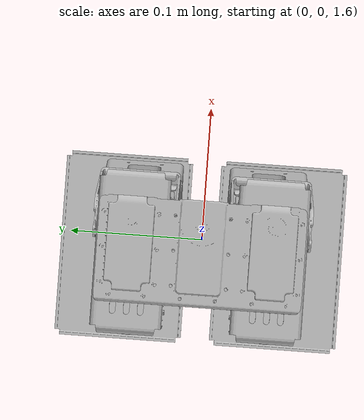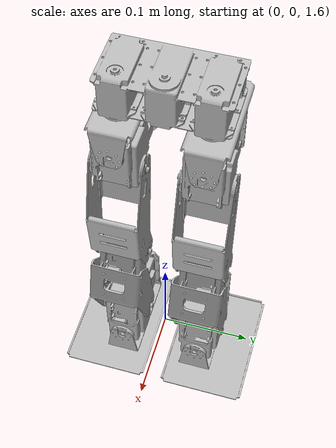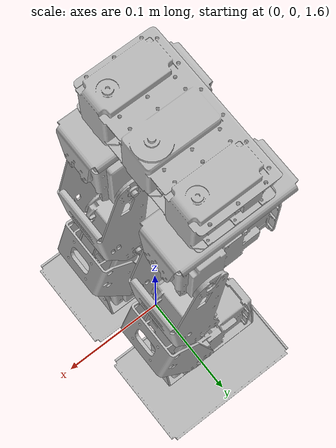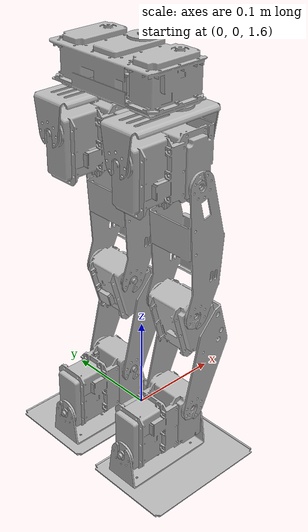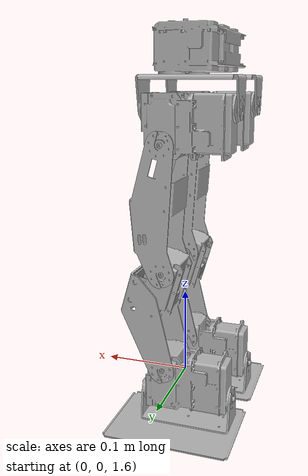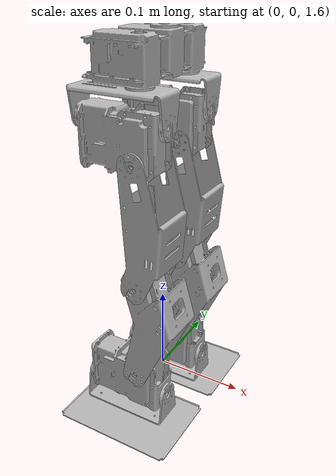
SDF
<?xml version="1.0"?>
<sdf version="1.6">
  <world name="testbot10_gazebo">
    <physics name="default_physics" default="0" type="ode">
      <max_step_size>0.001</max_step_size> <!-- 가지보 주기 -->
      <real_time_factor>1</real_time_factor>
      <real_time_update_rate>1000</real_time_update_rate>
      <ode>
	<solver>
	  <type>quick</type>
	  <iters>100</iters>
	  <sor>1.0</sor>
	  <use_dynamic_moi_rescaling>false</use_dynamic_moi_rescaling>
	</solver>
      </ode>
    </physics>

    <include>
      <uri>model://ground_plane</uri>
    </include>

    <include>
      <uri>model://sun</uri>
    </include>

<include>
      <uri>model://testbot10_description</uri>
	    <pose frame="">0 0 1 0 0 0</pose>
       <plugin name="testbot10_plugin" filename="libtestbot10_gazebo.so"/>
    </include>

  </world>
</sdf>

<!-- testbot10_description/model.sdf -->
<sdf version='1.6'>
  <model name='testbot10'>
   <plugin name="gazebo_ros_control" filename="libgazebo_ros_control.so">
    <robotNamespace>/testbot10</robotNamespace>
  </plugin>
    <link name='base_link'>
      <pose frame=''>-0 -0 1 0 -0 0</pose>
      <inertial>
        <pose frame=''>-0.016883 1e-06 -0.026142 0 -0 0</pose>
        <mass>0.281604</mass>
        <inertia>
          <ixx>9.5115e-05</ixx>
          <ixy>-1.64268e-09</ixy>
          <ixz>1.0623e-06</ixz>
          <iyy>0.000134449</iyy>
          <iyz>-8.02833e-09</iyz>
          <izz>0.000133906</izz>
        </inertia>
      </inertial>
      <self_collide>0</self_collide>
      <enable_wind>0</enable_wind>
      <kinematic>0</kinematic>
      <visual name='base_link_visual'>
        <pose frame=''>0 0 0 0 -0 0</pose>
        <geometry>
          <mesh>
            <scale>1 1 1</scale>
            <uri>/home/jaemin/catkin_ws/src/testbot10_description/meshes/base_link.STL</uri>
          </mesh>
        </geometry>
        <transparency>0</transparency>
        <cast_shadows>1</cast_shadows>
      </visual>
      <collision name='base_link_collision'>
        <laser_retro>0</laser_retro>
        <max_contacts>10</max_contacts>
        <pose frame=''>0 0 0 0 -0 0</pose>
        <geometry>
          <mesh>
            <uri>/home/jaemin/catkin_ws/src/testbot10_description/meshes/base_link.STL</uri>
            <scale>1 1 1</scale>
          </mesh>
        </geometry>
        <surface>
          <friction>
            <ode>
              <mu>1</mu>
              <mu2>1</mu2>
              <fdir1>0 0 0</fdir1>
              <slip1>0</slip1>
              <slip2>0</slip2>
            </ode>
            <torsional>
              <coefficient>1</coefficient>
              <patch_radius>0</patch_radius>
              <surface_radius>0</surface_radius>
              <use_patch_radius>1</use_patch_radius>
              <ode>
                <slip>0</slip>
              </ode>
            </torsional>
          </friction>
          <bounce>
            <restitution_coefficient>0</restitution_coefficient>
            <threshold>1e+06</threshold>
          </bounce>
          <contact>
            <collide_without_contact>0</collide_without_contact>
            <collide_without_contact_bitmask>1</collide_without_contact_bitmask>
            <collide_bitmask>1</collide_bitmask>
            <ode>
              <soft_cfm>0</soft_cfm>
              <soft_erp>0.2</soft_erp>
              <kp>1e+13</kp>
              <kd>1</kd>
              <max_vel>0.01</max_vel>
              <min_depth>0</min_depth>
            </ode>
            <bullet>
              <split_impulse>1</split_impulse>
              <split_impulse_penetration_threshold>-0.01</split_impulse_penetration_threshold>
              <soft_cfm>0</soft_cfm>
              <soft_erp>0.2</soft_erp>
              <kp>1e+13</kp>
              <kd>1</kd>
            </bullet>
          </contact>
        </surface>
      </collision>
    </link>
    <link name='LL_link1'>
      <pose frame=''>0 -0.045 0.948 0 0 -1.5708</pose>
      <inertial>
        <pose frame=''>0 -0.017114 -0.007811 0 -0 0</pose>
        <mass>0.0361632</mass>
        <inertia>
          <ixx>5.42466e-05</ixx>
          <ixy>-1.61368e-11</ixy>
          <ixz>2.26867e-18</ixz>
          <iyy>9.66379e-06</iyy>
          <iyz>-2.15975e-07</iyz>
          <izz>5.67807e-05</izz>
        </inertia>
      </inertial>
      <self_collide>0</self_collide>
      <enable_wind>0</enable_wind>
      <kinematic>0</kinematic>
      <visual name='LL_link1_visual'>
        <pose frame=''>0 0 0 0 -0 0</pose>
        <geometry>
          <mesh>
            <scale>1 1 1</scale>
            <uri>/home/jaemin/catkin_ws/src/testbot10_description/meshes/LL_link1.STL</uri>
          </mesh>
        </geometry>
        <transparency>0</transparency>
        <cast_shadows>1</cast_shadows>
      </visual>
      <collision name='LL_link1_collision'>
        <laser_retro>0</laser_retro>
        <max_contacts>10</max_contacts>
        <pose frame=''>0 0 0 0 -0 0</pose>
        <geometry>
          <mesh>
            <uri>/home/jaemin/catkin_ws/src/testbot10_description/meshes/LL_link1.STL</uri>
            <scale>1 1 1</scale>
          </mesh>
        </geometry>
        <surface>
          <friction>
            <ode>
              <mu>1</mu>
              <mu2>1</mu2>
              <fdir1>0 0 0</fdir1>
              <slip1>0</slip1>
              <slip2>0</slip2>
            </ode>
            <torsional>
              <coefficient>1</coefficient>
              <patch_radius>0</patch_radius>
              <surface_radius>0</surface_radius>
              <use_patch_radius>1</use_patch_radius>
              <ode>
                <slip>0</slip>
              </ode>
            </torsional>
          </friction>
          <bounce>
            <restitution_coefficient>0</restitution_coefficient>
            <threshold>1e+06</threshold>
          </bounce>
          <contact>
            <collide_without_contact>0</collide_without_contact>
            <collide_without_contact_bitmask>1</collide_without_contact_bitmask>
            <collide_bitmask>1</collide_bitmask>
            <ode>
              <soft_cfm>0</soft_cfm>
              <soft_erp>0.2</soft_erp>
              <kp>1e+13</kp>
              <kd>1</kd>
              <max_vel>0.01</max_vel>
              <min_depth>0</min_depth>
            </ode>
            <bullet>
              <split_impulse>1</split_impulse>
              <split_impulse_penetration_threshold>-0.01</split_impulse_penetration_threshold>
              <soft_cfm>0</soft_cfm>
              <soft_erp>0.2</soft_erp>
              <kp>1e+13</kp>
              <kd>1</kd>
            </bullet>
          </contact>
        </surface>
      </collision>
    </link>
    <link name='LL_link2'>
      <pose frame=''>-0.0682 -0.0451 0.91536 -1.5708 -0 -1.5708</pose>
      <inertial>
        <pose frame=''>-0.000255 0.017523 0.050762 0 -0 0</pose>
        <mass>0.199137</mass>
        <inertia>
          <ixx>7.9422e-05</ixx>
          <ixy>1.06395e-06</ixy>
          <ixz>-4.62259e-09</ixz>
          <iyy>4.77173e-05</iyy>
          <iyz>-1.04492e-06</iyz>
          <izz>8.02433e-05</izz>
        </inertia>
      </inertial>
      <self_collide>0</self_collide>
      <enable_wind>0</enable_wind>
      <kinematic>0</kinematic>
      <visual name='LL_link2_visual'>
        <pose frame=''>0 0 0 0 -0 0</pose>
        <geometry>
          <mesh>
            <scale>1 1 1</scale>
            <uri>/home/jaemin/catkin_ws/src/testbot10_description/meshes/LL_link2.STL</uri>
          </mesh>
        </geometry>
        <transparency>0</transparency>
        <cast_shadows>1</cast_shadows>
      </visual>
      <collision name='LL_link2_collision'>
        <laser_retro>0</laser_retro>
        <max_contacts>10</max_contacts>
        <pose frame=''>0 0 0 0 -0 0</pose>
        <geometry>
          <mesh>
            <uri>/home/jaemin/catkin_ws/src/testbot10_description/meshes/LL_link2.STL</uri>
            <scale>1 1 1</scale>
          </mesh>
        </geometry>
        <surface>
          <friction>
            <ode>
              <mu>1</mu>
              <mu2>1</mu2>
              <fdir1>0 0 0</fdir1>
              <slip1>0</slip1>
              <slip2>0</slip2>
            </ode>
            <torsional>
              <coefficient>1</coefficient>
              <patch_radius>0</patch_radius>
              <surface_radius>0</surface_radius>
              <use_patch_radius>1</use_patch_radius>
              <ode>
                <slip>0</slip>
              </ode>
            </torsional>
          </friction>
          <bounce>
            <restitution_coefficient>0</restitution_coefficient>
            <threshold>1e+06</threshold>
          </bounce>
          <contact>
            <collide_without_contact>0</collide_without_contact>
            <collide_without_contact_bitmask>1</collide_without_contact_bitmask>
            <collide_bitmask>1</collide_bitmask>
            <ode>
              <soft_cfm>0</soft_cfm>
              <soft_erp>0.2</soft_erp>
              <kp>1e+13</kp>
              <kd>1</kd>
              <max_vel>0.01</max_vel>
              <min_depth>0</min_depth>
            </ode>
            <bullet>
              <split_impulse>1</split_impulse>
              <split_impulse_penetration_threshold>-0.01</split_impulse_penetration_threshold>
              <soft_cfm>0</soft_cfm>
              <soft_erp>0.2</soft_erp>
              <kp>1e+13</kp>
              <kd>1</kd>
            </bullet>
          </contact>
        </surface>
      </collision>
    </link>
    <link name='LL_link3'>
      <pose frame=''>0.00473 -0.019 0.87929 0.791928 1.57079 2.36272</pose>
      <inertial>
        <pose frame=''>0.070431 -0.008638 -0.028553 0 -0 0</pose>
        <mass>0.0264468</mass>
        <inertia>
          <ixx>1.76003e-05</ixx>
          <ixy>1.98294e-06</ixy>
          <ixz>-1.07814e-18</ixz>
          <iyy>4.19729e-05</iyy>
          <iyz>3.18617e-19</iyz>
          <izz>3.31231e-05</izz>
        </inertia>
      </inertial>
      <self_collide>0</self_collide>
      <enable_wind>0</enable_wind>
      <kinematic>0</kinematic>
      <visual name='LL_link3_visual'>
        <pose frame=''>0 0 0 0 -0 0</pose>
        <geometry>
          <mesh>
            <scale>1 1 1</scale>
            <uri>/home/jaemin/catkin_ws/src/testbot10_description/meshes/LL_link3.STL</uri>
          </mesh>
        </geometry>
        <transparency>0</transparency>
        <cast_shadows>1</cast_shadows>
      </visual>
      <collision name='LL_link3_collision'>
        <laser_retro>0</laser_retro>
        <max_contacts>10</max_contacts>
        <pose frame=''>0 0 0 0 -0 0</pose>
        <geometry>
          <mesh>
            <uri>/home/jaemin/catkin_ws/src/testbot10_description/meshes/LL_link3.STL</uri>
            <scale>1 1 1</scale>
          </mesh>
        </geometry>
        <surface>
          <friction>
            <ode>
              <mu>1</mu>
              <mu2>1</mu2>
              <fdir1>0 0 0</fdir1>
              <slip1>0</slip1>
              <slip2>0</slip2>
            </ode>
            <torsional>
              <coefficient>1</coefficient>
              <patch_radius>0</patch_radius>
              <surface_radius>0</surface_radius>
              <use_patch_radius>1</use_patch_radius>
              <ode>
                <slip>0</slip>
              </ode>
            </torsional>
          </friction>
          <bounce>
            <restitution_coefficient>0</restitution_coefficient>
            <threshold>1e+06</threshold>
          </bounce>
          <contact>
            <collide_without_contact>0</collide_without_contact>
            <collide_without_contact_bitmask>1</collide_without_contact_bitmask>
            <collide_bitmask>1</collide_bitmask>
            <ode>
              <soft_cfm>0</soft_cfm>
              <soft_erp>0.2</soft_erp>
              <kp>1e+13</kp>
              <kd>1</kd>
              <max_vel>0.01</max_vel>
              <min_depth>0</min_depth>
            </ode>
            <bullet>
              <split_impulse>1</split_impulse>
              <split_impulse_penetration_threshold>-0.01</split_impulse_penetration_threshold>
              <soft_cfm>0</soft_cfm>
              <soft_erp>0.2</soft_erp>
              <kp>1e+13</kp>
              <kd>1</kd>
            </bullet>
          </contact>
        </surface>
      </collision>
    </link>
    <link name='LL_link4'>
      <pose frame=''>0.004713 -0.019 0.743 0.779576 1.57079 2.35593</pose>
      <inertial>
        <pose frame=''>0.030599 -0.011896 -0.026025 0 -0 0</pose>
        <mass>0.1488</mass>
        <inertia>
          <ixx>7.27019e-05</ixx>
          <ixy>-1.14416e-05</ixy>
          <ixz>9.55231e-07</ixz>
          <iyy>0.000125677</iyy>
          <iyz>-1.43117e-07</iyz>
          <izz>9.73222e-05</izz>
        </inertia>
      </inertial>
      <self_collide>0</self_collide>
      <enable_wind>0</enable_wind>
      <kinematic>0</kinematic>
      <visual name='LL_link4_visual'>
        <pose frame=''>0 0 0 0 -0 0</pose>
        <geometry>
          <mesh>
            <scale>1 1 1</scale>
            <uri>/home/jaemin/catkin_ws/src/testbot10_description/meshes/LL_link4.STL</uri>
          </mesh>
        </geometry>
        <transparency>0</transparency>
        <cast_shadows>1</cast_shadows>
      </visual>
      <collision name='LL_link4_collision'>
        <laser_retro>0</laser_retro>
        <max_contacts>10</max_contacts>
        <pose frame=''>0 0 0 0 -0 0</pose>
        <geometry>
          <mesh>
            <uri>/home/jaemin/catkin_ws/src/testbot10_description/meshes/LL_link4.STL</uri>
            <scale>1 1 1</scale>
          </mesh>
        </geometry>
        <surface>
          <friction>
            <ode>
              <mu>1</mu>
              <mu2>1</mu2>
              <fdir1>0 0 0</fdir1>
              <slip1>0</slip1>
              <slip2>0</slip2>
            </ode>
            <torsional>
              <coefficient>1</coefficient>
              <patch_radius>0</patch_radius>
              <surface_radius>0</surface_radius>
              <use_patch_radius>1</use_patch_radius>
              <ode>
                <slip>0</slip>
              </ode>
            </torsional>
          </friction>
          <bounce>
            <restitution_coefficient>0</restitution_coefficient>
            <threshold>1e+06</threshold>
          </bounce>
          <contact>
            <collide_without_contact>0</collide_without_contact>
            <collide_without_contact_bitmask>1</collide_without_contact_bitmask>
            <collide_bitmask>1</collide_bitmask>
            <ode>
              <soft_cfm>0</soft_cfm>
              <soft_erp>0.2</soft_erp>
              <kp>1e+13</kp>
              <kd>1</kd>
              <max_vel>0.01</max_vel>
              <min_depth>0</min_depth>
            </ode>
            <bullet>
              <split_impulse>1</split_impulse>
              <split_impulse_penetration_threshold>-0.01</split_impulse_penetration_threshold>
              <soft_cfm>0</soft_cfm>
              <soft_erp>0.2</soft_erp>
              <kp>1e+13</kp>
              <kd>1</kd>
            </bullet>
          </contact>
        </surface>
      </collision>
    </link>
    <link name='LL_link5'>
      <pose frame=''>0.004699 -0.018999 0.63124 0.779576 1.57079 2.35593</pose>
      <inertial>
        <pose frame=''>0.018405 0.022298 -0.025718 0 -0 0</pose>
        <mass>0.199137</mass>
        <inertia>
          <ixx>4.77173e-05</ixx>
          <ixy>-1.04751e-06</ixy>
          <ixz>1.05483e-06</ixz>
          <iyy>8.02432e-05</iyy>
          <iyz>9.18842e-09</iyz>
          <izz>7.9422e-05</izz>
        </inertia>
      </inertial>
      <self_collide>0</self_collide>
      <enable_wind>0</enable_wind>
      <kinematic>0</kinematic>
      <visual name='LL_link5_visual'>
        <pose frame=''>0 0 0 0 -0 0</pose>
        <geometry>
          <mesh>
            <scale>1 1 1</scale>
            <uri>/home/jaemin/catkin_ws/src/testbot10_description/meshes/LL_link5.STL</uri>
          </mesh>
        </geometry>
        <transparency>0</transparency>
        <cast_shadows>1</cast_shadows>
      </visual>
      <collision name='LL_link5_collision'>
        <laser_retro>0</laser_retro>
        <max_contacts>10</max_contacts>
        <pose frame=''>0 0 0 0 -0 0</pose>
        <geometry>
          <mesh>
            <uri>/home/jaemin/catkin_ws/src/testbot10_description/meshes/LL_link5.STL</uri>
            <scale>1 1 1</scale>
          </mesh>
        </geometry>
        <surface>
          <friction>
            <ode>
              <mu>1</mu>
              <mu2>1</mu2>
              <fdir1>0 0 0</fdir1>
              <slip1>0</slip1>
              <slip2>0</slip2>
            </ode>
            <torsional>
              <coefficient>1</coefficient>
              <patch_radius>0</patch_radius>
              <surface_radius>0</surface_radius>
              <use_patch_radius>1</use_patch_radius>
              <ode>
                <slip>0</slip>
              </ode>
            </torsional>
          </friction>
          <bounce>
            <restitution_coefficient>0</restitution_coefficient>
            <threshold>1e+06</threshold>
          </bounce>
          <contact>
            <collide_without_contact>0</collide_without_contact>
            <collide_without_contact_bitmask>1</collide_without_contact_bitmask>
            <collide_bitmask>1</collide_bitmask>
            <ode>
              <soft_cfm>0</soft_cfm>
              <soft_erp>0.2</soft_erp>
              <kp>1e+13</kp>
              <kd>1</kd>
              <max_vel>0.01</max_vel>
              <min_depth>0</min_depth>
            </ode>
            <bullet>
              <split_impulse>1</split_impulse>
              <split_impulse_penetration_threshold>-0.01</split_impulse_penetration_threshold>
              <soft_cfm>0</soft_cfm>
              <soft_erp>0.2</soft_erp>
              <kp>1e+13</kp>
              <kd>1</kd>
            </bullet>
          </contact>
        </surface>
      </collision>
    </link>
    <link name='LL_link6'>
      <pose frame=''>-0.068201 -0.045099 0.59544 0.779576 1.57079 2.35593</pose>
      <inertial>
        <pose frame=''>0.031514 -0.057299 -0.010606 0 -0 0</pose>
        <mass>0.11014</mass>
        <inertia>
          <ixx>0.000244915</ixx>
          <ixy>1.54109e-10</ixy>
          <ixz>2.4e-10</ixz>
          <iyy>6.94954e-05</iyy>
          <iyz>-6.11922e-07</iyz>
          <izz>0.000183606</izz>
        </inertia>
      </inertial>
      <self_collide>0</self_collide>
      <enable_wind>0</enable_wind>
      <kinematic>0</kinematic>
      <visual name='LL_link6_visual'>
        <pose frame=''>0 0 0 0 -0 0</pose>
        <geometry>
          <mesh>
            <scale>1 1 1</scale>
            <uri>/home/jaemin/catkin_ws/src/testbot10_description/meshes/LL_link6.STL</uri>
          </mesh>
        </geometry>
        <transparency>0</transparency>
        <cast_shadows>1</cast_shadows>
      </visual>
      <collision name='LL_link6_collision'>
        <laser_retro>0</laser_retro>
        <max_contacts>10</max_contacts>
        <pose frame=''>0 0 0 0 -0 0</pose>
        <geometry>
          <mesh>
            <uri>/home/jaemin/catkin_ws/src/testbot10_description/meshes/LL_link6.STL</uri>
            <scale>1 1 1</scale>
          </mesh>
        </geometry>
        <surface>
          <friction>
            <ode>
              <mu>1</mu>
              <mu2>1</mu2>
              <fdir1>0 0 0</fdir1>
              <slip1>0</slip1>
              <slip2>0</slip2>
            </ode>
            <torsional>
              <coefficient>1</coefficient>
              <patch_radius>0</patch_radius>
              <surface_radius>0</surface_radius>
              <use_patch_radius>1</use_patch_radius>
              <ode>
                <slip>0</slip>
              </ode>
            </torsional>
          </friction>
          <bounce>
            <restitution_coefficient>0</restitution_coefficient>
            <threshold>1e+06</threshold>
          </bounce>
          <contact>
            <collide_without_contact>0</collide_without_contact>
            <collide_without_contact_bitmask>1</collide_without_contact_bitmask>
            <collide_bitmask>1</collide_bitmask>
            <ode>
              <soft_cfm>0</soft_cfm>
              <soft_erp>0.2</soft_erp>
              <kp>1e+13</kp>
              <kd>1</kd>
              <max_vel>0.01</max_vel>
              <min_depth>0</min_depth>
            </ode>
            <bullet>
              <split_impulse>1</split_impulse>
              <split_impulse_penetration_threshold>-0.01</split_impulse_penetration_threshold>
              <soft_cfm>0</soft_cfm>
              <soft_erp>0.2</soft_erp>
              <kp>1e+13</kp>
              <kd>1</kd>
            </bullet>
          </contact>
        </surface>
      </collision>
    </link>
    <link name='RL_link1'>
      <pose frame=''>-0 0.051775 0.945828 0 0 -1.5708</pose>
      <inertial>
        <pose frame=''>0.006775 -0.017113 -0.00564 0 -0 0</pose>
        <mass>0.0361632</mass>
        <inertia>
          <ixx>5.42466e-05</ixx>
          <ixy>-1.61368e-11</ixy>
          <ixz>2.39357e-18</ixz>
          <iyy>9.66379e-06</iyy>
          <iyz>-2.15975e-07</iyz>
          <izz>5.67807e-05</izz>
        </inertia>
      </inertial>
      <self_collide>0</self_collide>
      <enable_wind>0</enable_wind>
      <kinematic>0</kinematic>
      <visual name='RL_link1_visual'>
        <pose frame=''>0 0 0 0 -0 0</pose>
        <geometry>
          <mesh>
            <scale>1 1 1</scale>
            <uri>/home/jaemin/catkin_ws/src/testbot10_description/meshes/RL_link1.STL</uri>
          </mesh>
        </geometry>
        <transparency>0</transparency>
        <cast_shadows>1</cast_shadows>
      </visual>
      <collision name='RL_link1_collision'>
        <laser_retro>0</laser_retro>
        <max_contacts>10</max_contacts>
        <pose frame=''>0 0 0 0 -0 0</pose>
        <geometry>
          <mesh>
            <uri>/home/jaemin/catkin_ws/src/testbot10_description/meshes/RL_link1.STL</uri>
            <scale>1 1 1</scale>
          </mesh>
        </geometry>
        <surface>
          <friction>
            <ode>
              <mu>1</mu>
              <mu2>1</mu2>
              <fdir1>0 0 0</fdir1>
              <slip1>0</slip1>
              <slip2>0</slip2>
            </ode>
            <torsional>
              <coefficient>1</coefficient>
              <patch_radius>0</patch_radius>
              <surface_radius>0</surface_radius>
              <use_patch_radius>1</use_patch_radius>
              <ode>
                <slip>0</slip>
              </ode>
            </torsional>
          </friction>
          <bounce>
            <restitution_coefficient>0</restitution_coefficient>
            <threshold>1e+06</threshold>
          </bounce>
          <contact>
            <collide_without_contact>0</collide_without_contact>
            <collide_without_contact_bitmask>1</collide_without_contact_bitmask>
            <collide_bitmask>1</collide_bitmask>
            <ode>
              <soft_cfm>0</soft_cfm>
              <soft_erp>0.2</soft_erp>
              <kp>1e+13</kp>
              <kd>1</kd>
              <max_vel>0.01</max_vel>
              <min_depth>0</min_depth>
            </ode>
            <bullet>
              <split_impulse>1</split_impulse>
              <split_impulse_penetration_threshold>-0.01</split_impulse_penetration_threshold>
              <soft_cfm>0</soft_cfm>
              <soft_erp>0.2</soft_erp>
              <kp>1e+13</kp>
              <kd>1</kd>
            </bullet>
          </contact>
        </surface>
      </collision>
    </link>
    <link name='RL_link2'>
      <pose frame=''>-0.0682 0.044901 0.91536 -1.5708 -0 -1.5708</pose>
      <inertial>
        <pose frame=''>0.000145 0.017523 0.050759 0 -0 0</pose>
        <mass>0.199137</mass>
        <inertia>
          <ixx>7.9422e-05</ixx>
          <ixy>-1.06064e-06</ixy>
          <ixz>-4.62259e-09</ixz>
          <iyy>4.77173e-05</iyy>
          <iyz>-1.04163e-06</iyz>
          <izz>8.02433e-05</izz>
        </inertia>
      </inertial>
      <self_collide>0</self_collide>
      <enable_wind>0</enable_wind>
      <kinematic>0</kinematic>
      <visual name='RL_link2_visual'>
        <pose frame=''>0 0 0 0 -0 0</pose>
        <geometry>
          <mesh>
            <scale>1 1 1</scale>
            <uri>/home/jaemin/catkin_ws/src/testbot10_description/meshes/RL_link2.STL</uri>
          </mesh>
        </geometry>
        <transparency>0</transparency>
        <cast_shadows>1</cast_shadows>
      </visual>
      <collision name='RL_link2_collision'>
        <laser_retro>0</laser_retro>
        <max_contacts>10</max_contacts>
        <pose frame=''>0 0 0 0 -0 0</pose>
        <geometry>
          <mesh>
            <uri>/home/jaemin/catkin_ws/src/testbot10_description/meshes/RL_link2.STL</uri>
            <scale>1 1 1</scale>
          </mesh>
        </geometry>
        <surface>
          <friction>
            <ode>
              <mu>1</mu>
              <mu2>1</mu2>
              <fdir1>0 0 0</fdir1>
              <slip1>0</slip1>
              <slip2>0</slip2>
            </ode>
            <torsional>
              <coefficient>1</coefficient>
              <patch_radius>0</patch_radius>
              <surface_radius>0</surface_radius>
              <use_patch_radius>1</use_patch_radius>
              <ode>
                <slip>0</slip>
              </ode>
            </torsional>
          </friction>
          <bounce>
            <restitution_coefficient>0</restitution_coefficient>
            <threshold>1e+06</threshold>
          </bounce>
          <contact>
            <collide_without_contact>0</collide_without_contact>
            <collide_without_contact_bitmask>1</collide_without_contact_bitmask>
            <collide_bitmask>1</collide_bitmask>
            <ode>
              <soft_cfm>0</soft_cfm>
              <soft_erp>0.2</soft_erp>
              <kp>1e+13</kp>
              <kd>1</kd>
              <max_vel>0.01</max_vel>
              <min_depth>0</min_depth>
            </ode>
            <bullet>
              <split_impulse>1</split_impulse>
              <split_impulse_penetration_threshold>-0.01</split_impulse_penetration_threshold>
              <soft_cfm>0</soft_cfm>
              <soft_erp>0.2</soft_erp>
              <kp>1e+13</kp>
              <kd>1</kd>
            </bullet>
          </contact>
        </surface>
      </collision>
    </link>
    <link name='RL_link3'>
      <pose frame=''>0.00473 0.023975 0.879119 0.791928 1.57079 2.36272</pose>
      <inertial>
        <pose frame=''>0.070258 -0.008647 0.023579 0 -0 0</pose>
        <mass>0.0264468</mass>
        <inertia>
          <ixx>1.76008e-05</ixx>
          <ixy>1.98589e-06</ixy>
          <ixz>9.44111e-19</ixz>
          <iyy>4.19724e-05</iyy>
          <iyz>2.03433e-19</iyz>
          <izz>3.31231e-05</izz>
        </inertia>
      </inertial>
      <self_collide>0</self_collide>
      <enable_wind>0</enable_wind>
      <kinematic>0</kinematic>
      <visual name='RL_link3_visual'>
        <pose frame=''>0 0 0 0 -0 0</pose>
        <geometry>
          <mesh>
            <scale>1 1 1</scale>
            <uri>/home/jaemin/catkin_ws/src/testbot10_description/meshes/RL_link3.STL</uri>
          </mesh>
        </geometry>
        <transparency>0</transparency>
        <cast_shadows>1</cast_shadows>
      </visual>
      <collision name='RL_link3_collision'>
        <laser_retro>0</laser_retro>
        <max_contacts>10</max_contacts>
        <pose frame=''>0 0 0 0 -0 0</pose>
        <geometry>
          <mesh>
            <uri>/home/jaemin/catkin_ws/src/testbot10_description/meshes/RL_link3.STL</uri>
            <scale>1 1 1</scale>
          </mesh>
        </geometry>
        <surface>
          <friction>
            <ode>
              <mu>1</mu>
              <mu2>1</mu2>
              <fdir1>0 0 0</fdir1>
              <slip1>0</slip1>
              <slip2>0</slip2>
            </ode>
            <torsional>
              <coefficient>1</coefficient>
              <patch_radius>0</patch_radius>
              <surface_radius>0</surface_radius>
              <use_patch_radius>1</use_patch_radius>
              <ode>
                <slip>0</slip>
              </ode>
            </torsional>
          </friction>
          <bounce>
            <restitution_coefficient>0</restitution_coefficient>
            <threshold>1e+06</threshold>
          </bounce>
          <contact>
            <collide_without_contact>0</collide_without_contact>
            <collide_without_contact_bitmask>1</collide_without_contact_bitmask>
            <collide_bitmask>1</collide_bitmask>
            <ode>
              <soft_cfm>0</soft_cfm>
              <soft_erp>0.2</soft_erp>
              <kp>1e+13</kp>
              <kd>1</kd>
              <max_vel>0.01</max_vel>
              <min_depth>0</min_depth>
            </ode>
            <bullet>
              <split_impulse>1</split_impulse>
              <split_impulse_penetration_threshold>-0.01</split_impulse_penetration_threshold>
              <soft_cfm>0</soft_cfm>
              <soft_erp>0.2</soft_erp>
              <kp>1e+13</kp>
              <kd>1</kd>
            </bullet>
          </contact>
        </surface>
      </collision>
    </link>
    <link name='RL_link4'>
      <pose frame=''>0.004729 0.023976 0.742826 -0.779575 -1.57079 -0.785662</pose>
      <inertial>
        <pose frame=''>-0.030425 0.012164 0.020917 0 -0 0</pose>
        <mass>0.1488</mass>
        <inertia>
          <ixx>7.26973e-05</ixx>
          <ixy>-1.14266e-05</ixy>
          <ixz>1.08105e-06</ixz>
          <iyy>0.000125675</iyy>
          <iyz>-4.62877e-07</iyz>
          <izz>9.7329e-05</izz>
        </inertia>
      </inertial>
      <self_collide>0</self_collide>
      <enable_wind>0</enable_wind>
      <kinematic>0</kinematic>
      <visual name='RL_link4_visual'>
        <pose frame=''>0 0 0 0 -0 0</pose>
        <geometry>
          <mesh>
            <scale>1 1 1</scale>
            <uri>/home/jaemin/catkin_ws/src/testbot10_description/meshes/RL_link4.STL</uri>
          </mesh>
        </geometry>
        <transparency>0</transparency>
        <cast_shadows>1</cast_shadows>
      </visual>
      <collision name='RL_link4_collision'>
        <laser_retro>0</laser_retro>
        <max_contacts>10</max_contacts>
        <pose frame=''>0 0 0 0 -0 0</pose>
        <geometry>
          <mesh>
            <uri>/home/jaemin/catkin_ws/src/testbot10_description/meshes/RL_link4.STL</uri>
            <scale>1 1 1</scale>
          </mesh>
        </geometry>
        <surface>
          <friction>
            <ode>
              <mu>1</mu>
              <mu2>1</mu2>
              <fdir1>0 0 0</fdir1>
              <slip1>0</slip1>
              <slip2>0</slip2>
            </ode>
            <torsional>
              <coefficient>1</coefficient>
              <patch_radius>0</patch_radius>
              <surface_radius>0</surface_radius>
              <use_patch_radius>1</use_patch_radius>
              <ode>
                <slip>0</slip>
              </ode>
            </torsional>
          </friction>
          <bounce>
            <restitution_coefficient>0</restitution_coefficient>
            <threshold>1e+06</threshold>
          </bounce>
          <contact>
            <collide_without_contact>0</collide_without_contact>
            <collide_without_contact_bitmask>1</collide_without_contact_bitmask>
            <collide_bitmask>1</collide_bitmask>
            <ode>
              <soft_cfm>0</soft_cfm>
              <soft_erp>0.2</soft_erp>
              <kp>1e+13</kp>
              <kd>1</kd>
              <max_vel>0.01</max_vel>
              <min_depth>0</min_depth>
            </ode>
            <bullet>
              <split_impulse>1</split_impulse>
              <split_impulse_penetration_threshold>-0.01</split_impulse_penetration_threshold>
              <soft_cfm>0</soft_cfm>
              <soft_erp>0.2</soft_erp>
              <kp>1e+13</kp>
              <kd>1</kd>
            </bullet>
          </contact>
        </surface>
      </collision>
    </link>
    <link name='RL_link5'>
      <pose frame=''>0.004729 0.019002 0.631236 1.24462 1.57078 2.82098</pose>
      <inertial>
        <pose frame=''>0.018486 0.022024 0.025881 0 -0 0</pose>
        <mass>0.199137</mass>
        <inertia>
          <ixx>4.77173e-05</ixx>
          <ixy>-1.03899e-06</ixy>
          <ixz>-1.06975e-06</ixz>
          <iyy>8.02432e-05</iyy>
          <iyz>9.18842e-09</iyz>
          <izz>7.9422e-05</izz>
        </inertia>
      </inertial>
      <self_collide>0</self_collide>
      <enable_wind>0</enable_wind>
      <kinematic>0</kinematic>
      <visual name='RL_link5_visual'>
        <pose frame=''>0 0 0 0 -0 0</pose>
        <geometry>
          <mesh>
            <scale>1 1 1</scale>
            <uri>/home/jaemin/catkin_ws/src/testbot10_description/meshes/RL_link5.STL</uri>
          </mesh>
        </geometry>
        <transparency>0</transparency>
        <cast_shadows>1</cast_shadows>
      </visual>
      <collision name='RL_link5_collision'>
        <laser_retro>0</laser_retro>
        <max_contacts>10</max_contacts>
        <pose frame=''>0 0 0 0 -0 0</pose>
        <geometry>
          <mesh>
            <uri>/home/jaemin/catkin_ws/src/testbot10_description/meshes/RL_link5.STL</uri>
            <scale>1 1 1</scale>
          </mesh>
        </geometry>
        <surface>
          <friction>
            <ode>
              <mu>1</mu>
              <mu2>1</mu2>
              <fdir1>0 0 0</fdir1>
              <slip1>0</slip1>
              <slip2>0</slip2>
            </ode>
            <torsional>
              <coefficient>1</coefficient>
              <patch_radius>0</patch_radius>
              <surface_radius>0</surface_radius>
              <use_patch_radius>1</use_patch_radius>
              <ode>
                <slip>0</slip>
              </ode>
            </torsional>
          </friction>
          <bounce>
            <restitution_coefficient>0</restitution_coefficient>
            <threshold>1e+06</threshold>
          </bounce>
          <contact>
            <collide_without_contact>0</collide_without_contact>
            <collide_without_contact_bitmask>1</collide_without_contact_bitmask>
            <collide_bitmask>1</collide_bitmask>
            <ode>
              <soft_cfm>0</soft_cfm>
              <soft_erp>0.2</soft_erp>
              <kp>1e+13</kp>
              <kd>1</kd>
              <max_vel>0.01</max_vel>
              <min_depth>0</min_depth>
            </ode>
            <bullet>
              <split_impulse>1</split_impulse>
              <split_impulse_penetration_threshold>-0.01</split_impulse_penetration_threshold>
              <soft_cfm>0</soft_cfm>
              <soft_erp>0.2</soft_erp>
              <kp>1e+13</kp>
              <kd>1</kd>
            </bullet>
          </contact>
        </surface>
      </collision>
    </link>
    <link name='RL_link6'>
      <pose frame=''>-0.068202 0.044902 0.595307 2.81916 1.57078 2.82472</pose>
      <inertial>
        <pose frame=''>0.031384 0.010168 0.057415 0 -0 0</pose>
        <mass>0.11014</mass>
        <inertia>
          <ixx>0.000244915</ixx>
          <ixy>-2.38272e-10</ixy>
          <ixz>-1.56768e-10</ixz>
          <iyy>0.000183606</iyy>
          <iyz>6.56892e-07</iyz>
          <izz>6.94959e-05</izz>
        </inertia>
      </inertial>
      <self_collide>0</self_collide>
      <enable_wind>0</enable_wind>
      <kinematic>0</kinematic>
      <visual name='RL_link6_visual'>
        <pose frame=''>0 0 0 0 -0 0</pose>
        <geometry>
          <mesh>
            <scale>1 1 1</scale>
            <uri>/home/jaemin/catkin_ws/src/testbot10_description/meshes/RL_link6.STL</uri>
          </mesh>
        </geometry>
        <transparency>0</transparency>
        <cast_shadows>1</cast_shadows>
      </visual>
      <collision name='RL_link6_collision'>
        <laser_retro>0</laser_retro>
        <max_contacts>10</max_contacts>
        <pose frame=''>0 0 0 0 -0 0</pose>
        <geometry>
          <mesh>
            <uri>/home/jaemin/catkin_ws/src/testbot10_description/meshes/RL_link6.STL</uri>
            <scale>1 1 1</scale>
          </mesh>
        </geometry>
        <surface>
          <friction>
            <ode>
              <mu>1</mu>
              <mu2>1</mu2>
              <fdir1>0 0 0</fdir1>
              <slip1>0</slip1>
              <slip2>0</slip2>
            </ode>
            <torsional>
              <coefficient>1</coefficient>
              <patch_radius>0</patch_radius>
              <surface_radius>0</surface_radius>
              <use_patch_radius>1</use_patch_radius>
              <ode>
                <slip>0</slip>
              </ode>
            </torsional>
          </friction>
          <bounce>
            <restitution_coefficient>0</restitution_coefficient>
            <threshold>1e+06</threshold>
          </bounce>
          <contact>
            <collide_without_contact>0</collide_without_contact>
            <collide_without_contact_bitmask>1</collide_without_contact_bitmask>
            <collide_bitmask>1</collide_bitmask>
            <ode>
              <soft_cfm>0</soft_cfm>
              <soft_erp>0.2</soft_erp>
              <kp>1e+13</kp>
              <kd>1</kd>
              <max_vel>0.01</max_vel>
              <min_depth>0</min_depth>
            </ode>
            <bullet>
              <split_impulse>1</split_impulse>
              <split_impulse_penetration_threshold>-0.01</split_impulse_penetration_threshold>
              <soft_cfm>0</soft_cfm>
              <soft_erp>0.2</soft_erp>
              <kp>1e+13</kp>
              <kd>1</kd>
            </bullet>
          </contact>
        </surface>
      </collision>
    </link>
    <joint name='LL_j1' type='revolute'>
      <parent>base_link</parent>
      <child>LL_link1</child>
      <pose frame=''>0 0 0 0 -0 0</pose>
      <axis>
        <xyz>0 0 1</xyz>
        <use_parent_model_frame>1</use_parent_model_frame>
        <limit>
          <lower>-3.13</lower>
          <upper>3.13</upper>
          <effort>0</effort>
          <velocity>0</velocity>
        </limit>
        <dynamics>
          <spring_reference>0</spring_reference>
          <spring_stiffness>0</spring_stiffness>
          <damping>0</damping>
          <friction>0</friction>
        </dynamics>
      </axis>
      <physics>
        <ode>
          <limit>
            <cfm>0</cfm>
            <erp>0.2</erp>
          </limit>
          <suspension>
            <cfm>0</cfm>
            <erp>0.2</erp>
          </suspension>
        </ode>
      </physics>
    </joint>
    <joint name='LL_j2' type='revolute'>
      <parent>LL_link1</parent>
      <child>LL_link2</child>
      <pose frame=''>0 0 0 0 -0 0</pose>
      <axis>
        <xyz>1 -4e-06 -4e-06</xyz>
        <use_parent_model_frame>1</use_parent_model_frame>
        <limit>
          <lower>-3.13</lower>
          <upper>3.13</upper>
          <effort>0</effort>
          <velocity>0</velocity>
        </limit>
        <dynamics>
          <spring_reference>0</spring_reference>
          <spring_stiffness>0</spring_stiffness>
          <damping>0</damping>
          <friction>0</friction>
        </dynamics>
      </axis>
      <physics>
        <ode>
          <limit>
            <cfm>0</cfm>
            <erp>0.2</erp>
          </limit>
          <suspension>
            <cfm>0</cfm>
            <erp>0.2</erp>
          </suspension>
        </ode>
      </physics>
    </joint>
    <joint name='LL_j3' type='revolute'>
      <parent>LL_link2</parent>
      <child>LL_link3</child>
      <pose frame=''>0 0 0 0 -0 0</pose>
      <axis>
        <xyz>-0 -1 -4e-06</xyz>
        <use_parent_model_frame>1</use_parent_model_frame>
        <limit>
          <lower>-3.13</lower>
          <upper>3.13</upper>
          <effort>0</effort>
          <velocity>0</velocity>
        </limit>
        <dynamics>
          <spring_reference>0</spring_reference>
          <spring_stiffness>0</spring_stiffness>
          <damping>0</damping>
          <friction>0</friction>
        </dynamics>
      </axis>
      <physics>
        <ode>
          <limit>
            <cfm>0</cfm>
            <erp>0.2</erp>
          </limit>
          <suspension>
            <cfm>0</cfm>
            <erp>0.2</erp>
          </suspension>
        </ode>
      </physics>
    </joint>
    <joint name='LL_j4' type='revolute'>
      <parent>LL_link3</parent>
      <child>LL_link4</child>
      <pose frame=''>0 0 0 0 -0 0</pose>
      <axis>
        <xyz>-0 -0.999995 -4e-06</xyz>
        <use_parent_model_frame>1</use_parent_model_frame>
        <limit>
          <lower>-3.13</lower>
          <upper>3.13</upper>
          <effort>0</effort>
          <velocity>0</velocity>
        </limit>
        <dynamics>
          <spring_reference>0</spring_reference>
          <spring_stiffness>0</spring_stiffness>
          <damping>0</damping>
          <friction>0</friction>
        </dynamics>
      </axis>
      <physics>
        <ode>
          <limit>
            <cfm>0</cfm>
            <erp>0.2</erp>
          </limit>
          <suspension>
            <cfm>0</cfm>
            <erp>0.2</erp>
          </suspension>
        </ode>
      </physics>
    </joint>
    <joint name='LL_j5' type='revolute'>
      <parent>LL_link4</parent>
      <child>LL_link5</child>
      <pose frame=''>0 0 0 0 -0 0</pose>
      <axis>
        <xyz>-0 -0.999995 -4e-06</xyz>
        <use_parent_model_frame>1</use_parent_model_frame>
        <limit>
          <lower>-3.13</lower>
          <upper>3.13</upper>
          <effort>0</effort>
          <velocity>0</velocity>
        </limit>
        <dynamics>
          <spring_reference>0</spring_reference>
          <spring_stiffness>0</spring_stiffness>
          <damping>0</damping>
          <friction>0</friction>
        </dynamics>
      </axis>
      <physics>
        <ode>
          <limit>
            <cfm>0</cfm>
            <erp>0.2</erp>
          </limit>
          <suspension>
            <cfm>0</cfm>
            <erp>0.2</erp>
          </suspension>
        </ode>
      </physics>
    </joint>
    <joint name='LL_j6' type='revolute'>
      <parent>LL_link5</parent>
      <child>LL_link6</child>
      <pose frame=''>0 0 0 0 -0 0</pose>
      <axis>
        <xyz>0.999995 -0 -4e-06</xyz>
        <use_parent_model_frame>1</use_parent_model_frame>
        <limit>
          <lower>-3.13</lower>
          <upper>3.13</upper>
          <effort>0</effort>
          <velocity>0</velocity>
        </limit>
        <dynamics>
          <spring_reference>0</spring_reference>
          <spring_stiffness>0</spring_stiffness>
          <damping>0</damping>
          <friction>0</friction>
        </dynamics>
      </axis>
      <physics>
        <ode>
          <limit>
            <cfm>0</cfm>
            <erp>0.2</erp>
          </limit>
          <suspension>
            <cfm>0</cfm>
            <erp>0.2</erp>
          </suspension>
        </ode>
      </physics>
    </joint>
    <joint name='RL_j1' type='revolute'>
      <parent>base_link</parent>
      <child>RL_link1</child>
      <pose frame=''>0 0 0 0 -0 0</pose>
      <axis>
        <xyz>0 0 1</xyz>
        <use_parent_model_frame>1</use_parent_model_frame>
        <limit>
          <lower>-3.13</lower>
          <upper>3.13</upper>
          <effort>0</effort>
          <velocity>0</velocity>
        </limit>
        <dynamics>
          <spring_reference>0</spring_reference>
          <spring_stiffness>0</spring_stiffness>
          <damping>0</damping>
          <friction>0</friction>
        </dynamics>
      </axis>
      <physics>
        <ode>
          <limit>
            <cfm>0</cfm>
            <erp>0.2</erp>
          </limit>
          <suspension>
            <cfm>0</cfm>
            <erp>0.2</erp>
          </suspension>
        </ode>
      </physics>
    </joint>
    <joint name='RL_j2' type='revolute'>
      <parent>RL_link1</parent>
      <child>RL_link2</child>
      <pose frame=''>0 0 0 0 -0 0</pose>
      <axis>
        <xyz>-1 4e-06 4e-06</xyz>
        <use_parent_model_frame>1</use_parent_model_frame>
        <limit>
          <lower>-3.13</lower>
          <upper>3.13</upper>
          <effort>0</effort>
          <velocity>0</velocity>
        </limit>
        <dynamics>
          <spring_reference>0</spring_reference>
          <spring_stiffness>0</spring_stiffness>
          <damping>0</damping>
          <friction>0</friction>
        </dynamics>
      </axis>
      <physics>
        <ode>
          <limit>
            <cfm>0</cfm>
            <erp>0.2</erp>
          </limit>
          <suspension>
            <cfm>0</cfm>
            <erp>0.2</erp>
          </suspension>
        </ode>
      </physics>
    </joint>
    <joint name='RL_j3' type='revolute'>
      <parent>RL_link2</parent>
      <child>RL_link3</child>
      <pose frame=''>0 0 0 0 -0 0</pose>
      <axis>
        <xyz>0 1 4e-06</xyz>
        <use_parent_model_frame>1</use_parent_model_frame>
        <limit>
          <lower>-3.13</lower>
          <upper>3.13</upper>
          <effort>0</effort>
          <velocity>0</velocity>
        </limit>
        <dynamics>
          <spring_reference>0</spring_reference>
          <spring_stiffness>0</spring_stiffness>
          <damping>0</damping>
          <friction>0</friction>
        </dynamics>
      </axis>
      <physics>
        <ode>
          <limit>
            <cfm>0</cfm>
            <erp>0.2</erp>
          </limit>
          <suspension>
            <cfm>0</cfm>
            <erp>0.2</erp>
          </suspension>
        </ode>
      </physics>
    </joint>
    <joint name='RL_j4' type='revolute'>
      <parent>RL_link3</parent>
      <child>RL_link4</child>
      <pose frame=''>0 0 0 0 -0 0</pose>
      <axis>
        <xyz>0 1 4e-06</xyz>
        <use_parent_model_frame>1</use_parent_model_frame>
        <limit>
          <lower>-3.13</lower>
          <upper>3.13</upper>
          <effort>0</effort>
          <velocity>0</velocity>
        </limit>
        <dynamics>
          <spring_reference>0</spring_reference>
          <spring_stiffness>0</spring_stiffness>
          <damping>0</damping>
          <friction>0</friction>
        </dynamics>
      </axis>
      <physics>
        <ode>
          <limit>
            <cfm>0</cfm>
            <erp>0.2</erp>
          </limit>
          <suspension>
            <cfm>0</cfm>
            <erp>0.2</erp>
          </suspension>
        </ode>
      </physics>
    </joint>
    <joint name='RL_j5' type='revolute'>
      <parent>RL_link4</parent>
      <child>RL_link5</child>
      <pose frame=''>0 0 0 0 -0 0</pose>
      <axis>
        <xyz>0 0.999995 4e-06</xyz>
        <use_parent_model_frame>1</use_parent_model_frame>
        <limit>
          <lower>-3.13</lower>
          <upper>3.13</upper>
          <effort>0</effort>
          <velocity>0</velocity>
        </limit>
        <dynamics>
          <spring_reference>0</spring_reference>
          <spring_stiffness>0</spring_stiffness>
          <damping>0</damping>
          <friction>0</friction>
        </dynamics>
      </axis>
      <physics>
        <ode>
          <limit>
            <cfm>0</cfm>
            <erp>0.2</erp>
          </limit>
          <suspension>
            <cfm>0</cfm>
            <erp>0.2</erp>
          </suspension>
        </ode>
      </physics>
    </joint>
    <joint name='RL_j6' type='revolute'>
      <parent>RL_link5</parent>
      <child>RL_link6</child>
      <pose frame=''>0 0 0 0 -0 0</pose>
      <axis>
        <xyz>-0.999995 4e-06 1.1e-05</xyz>
        <use_parent_model_frame>1</use_parent_model_frame>
        <limit>
          <lower>-3.13</lower>
          <upper>3.13</upper>
          <effort>0</effort>
          <velocity>0</velocity>
        </limit>
        <dynamics>
          <spring_reference>0</spring_reference>
          <spring_stiffness>0</spring_stiffness>
          <damping>0</damping>
          <friction>0</friction>
        </dynamics>
      </axis>
      <physics>
        <ode>
          <limit>
            <cfm>0</cfm>
            <erp>0.2</erp>
          </limit>
          <suspension>
            <cfm>0</cfm>
            <erp>0.2</erp>
          </suspension>
        </ode>
      </physics>
    </joint>
    <static>0</static>
    <allow_auto_disable>1</allow_auto_disable>
  </model>
</sdf>
